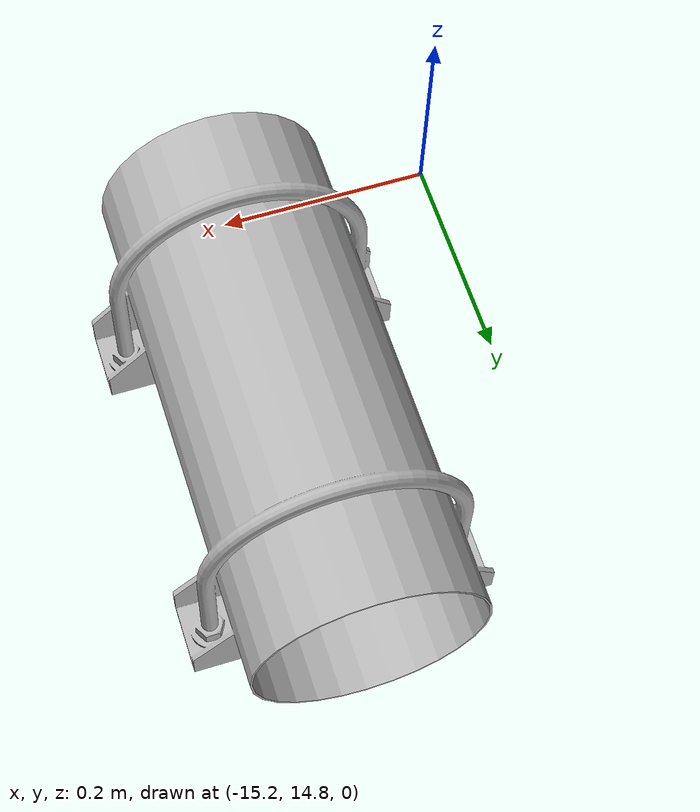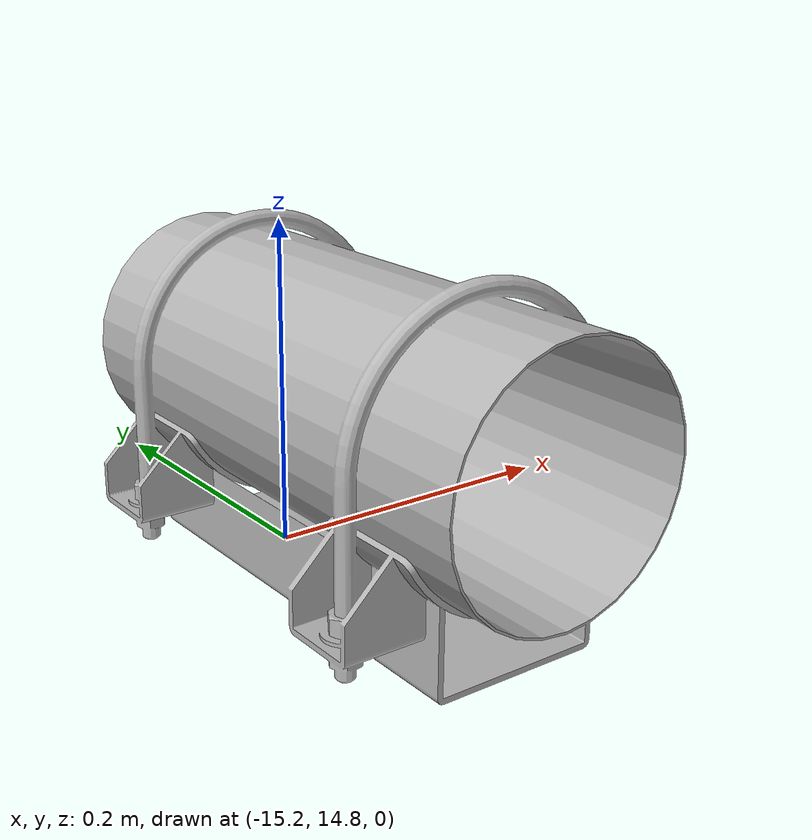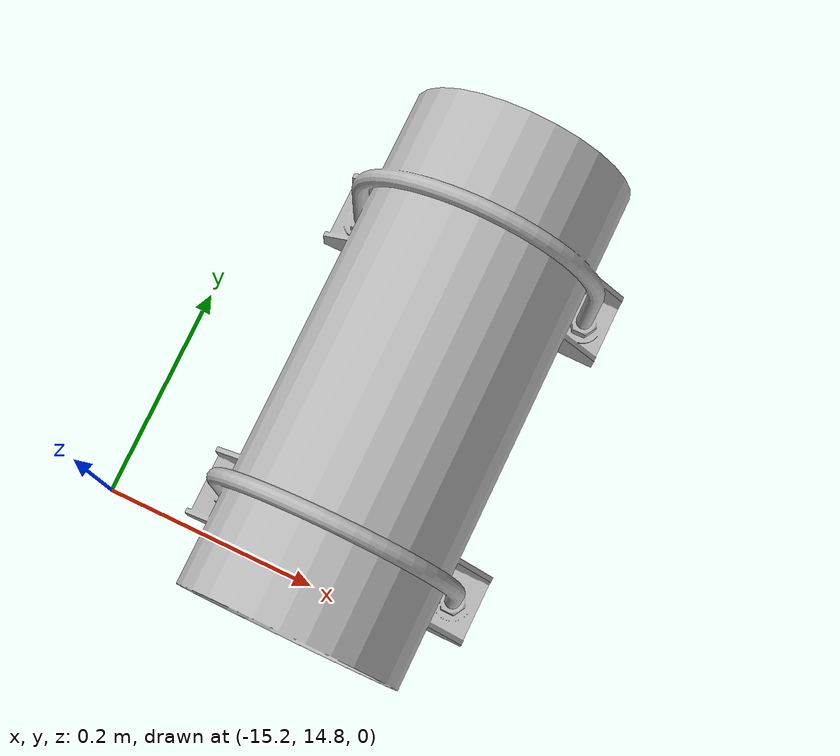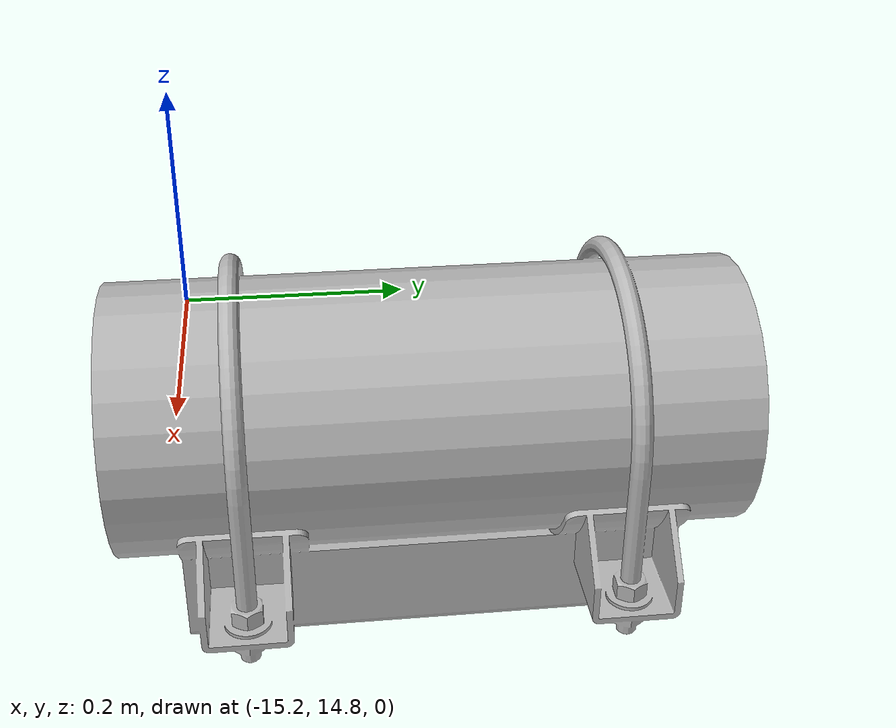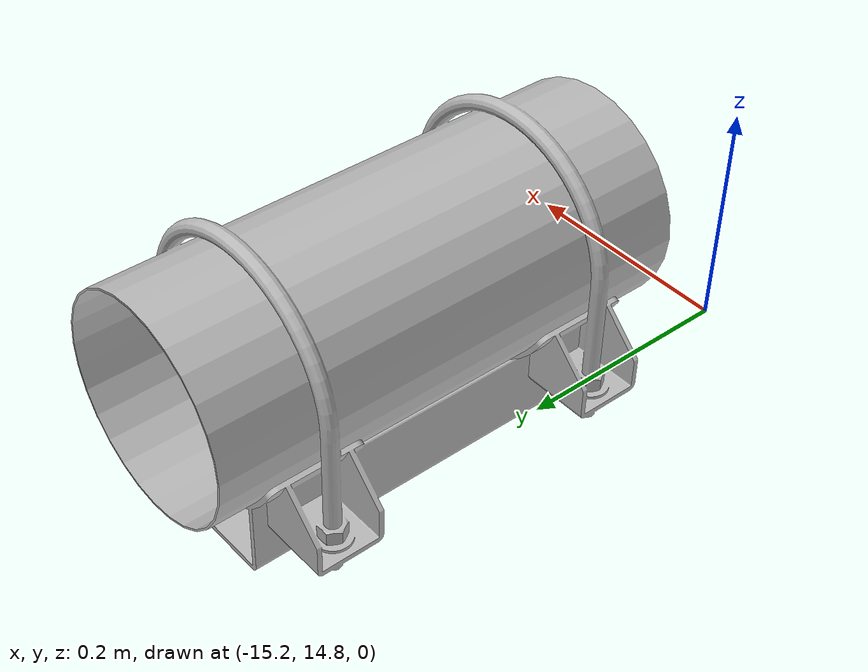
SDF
<?xml version="1.0"?>
<sdf version='1.7'>
  <model name='tube'>
    <static>true</static>
    <pose>-15 15 0 0 0 0</pose>
    <link name='base_link'>
      <inertial>
        <pose>0 -0 0 0 -0 0</pose>
        <mass>24.7</mass>
        <inertia>
          <ixx>0.29001</ixx>
          <ixy>0</ixy>
          <ixz>0</ixz>
          <iyy>0.16691</iyy>
          <iyz>0</iyz>
          <izz>0.32569</izz>
        </inertia>
      </inertial>
      <collision name='base_link_collision'>
        <pose>0 0 0 0 -0 0</pose>
        <geometry>
          <mesh>
            <scale>1 1 1</scale>
            <uri>model://tube/meshes/base_link.STL</uri>
          </mesh>
        </geometry>
      </collision>
      <visual name='base_link_visual'>
        <pose>0 0 0 0 -0 0</pose>
        <geometry>
          <mesh>
            <scale>1 1 1</scale>
            <uri>model://tube/meshes/base_link.STL</uri>
          </mesh>
        </geometry>
      </visual>
    </link>
  </model>
</sdf>
